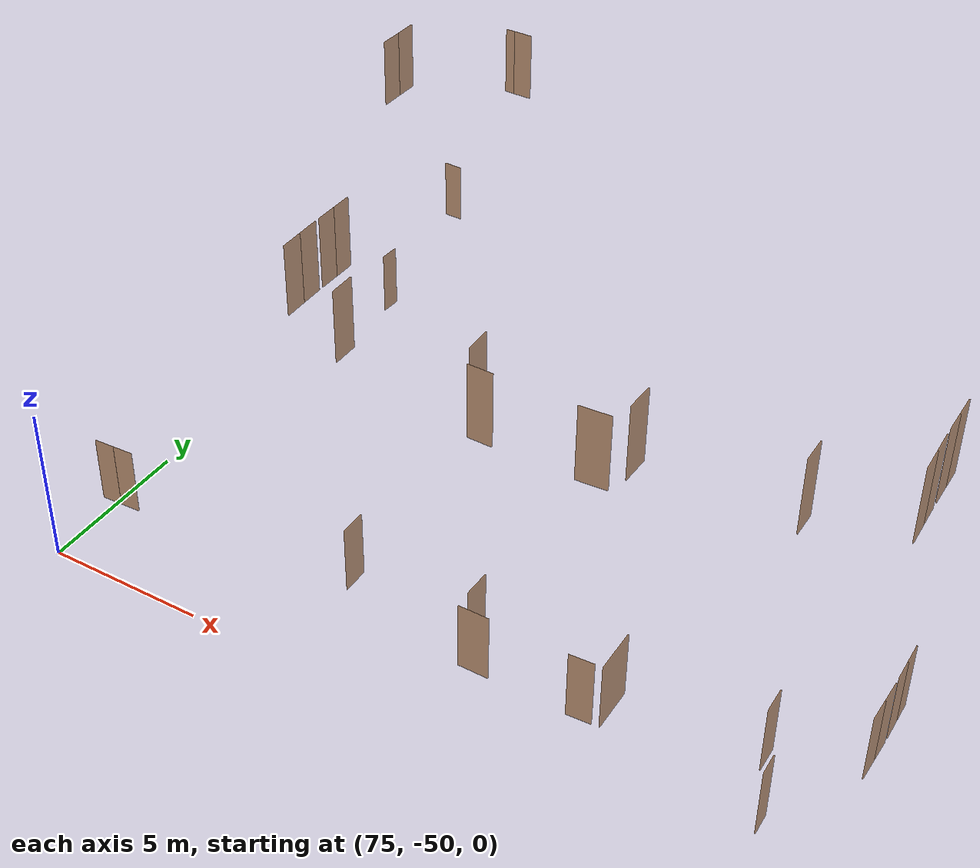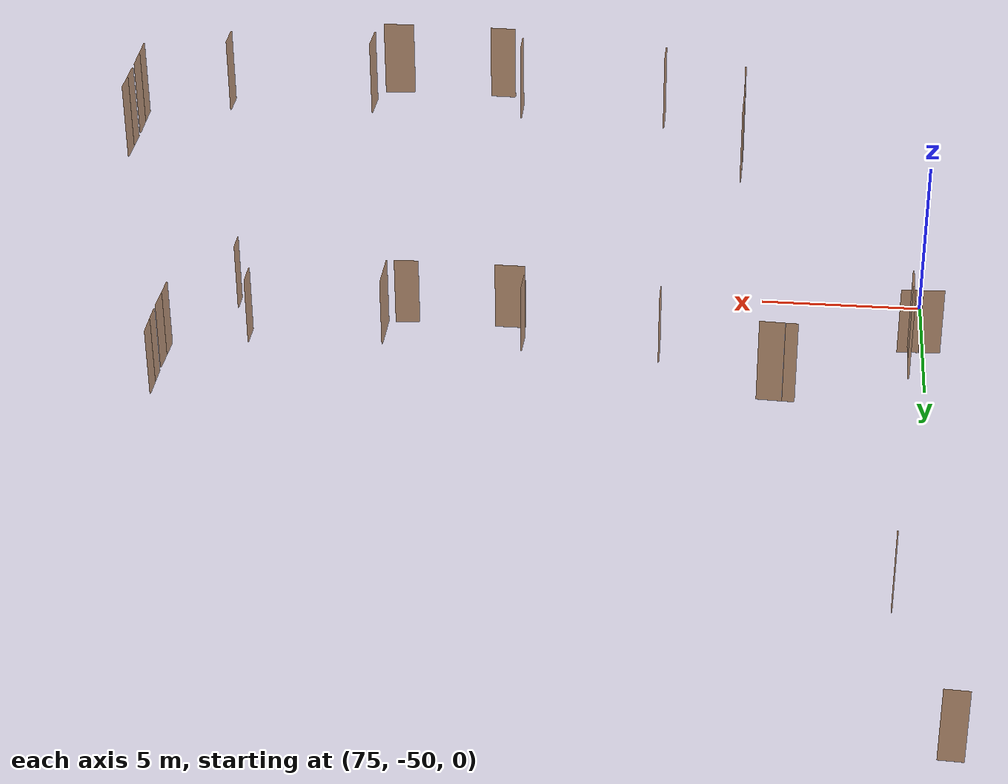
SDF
<sdf version="1.7">
 <world name="sim_world">
  <model name="TD0004SD">
   <pose>74.79835750045166 -27.734196090156722 0.0 0 0 3.0880747045317474</pose>
   <link name="right">
    <pose>0 0 1.11 0 0 0</pose>
    <visual name="right_visual">
     <geometry><box><size>0.680225894375982 0.03 2.2</size></box></geometry>
     <material>
      <ambient>0.5 0.25 0 0.6</ambient>
      <diffuse>0.5 0.25 0 0.6</diffuse>
      <pbr><metal><metalness>0.0</metalness></metal></pbr>
     </material>
    </visual>
    <collision name="right_collision">
     <geometry><box><size>0.680225894375982 0.03 2.2</size></box></geometry>
     <surface><contact><collide_bitmask>0x02</collide_bitmask></contact></surface>
    </collision>
    <inertial>
     <mass>50.0</mass>
     <inertia><ixx>20.17041666666667</ixx><iyy>22.09461361408169</iyy><izz>1.9316969474150196</izz></inertia>
    </inertial>
   </link>
   <joint name="right_joint" type="revolute">
    <parent>world</parent>
    <child>right</child>
    <axis><xyz>0 0 1</xyz><limit><lower>0</lower><upper>1.57</upper></limit></axis>
    <pose>0.345112947187991 0 0 0 0 0</pose>
   </joint>
   <plugin name="register_component" filename="libregister_component.so">
    <component name="Door">
     <v_max_door>0.5</v_max_door>
     <a_max_door>0.3</a_max_door>
     <a_nom_door>0.15</a_nom_door>
     <dx_min_door>0.01</dx_min_door>
     <f_max_door>500.0</f_max_door>
     <ros_interface>true</ros_interface>
     <door name="TD0004SD" type="SwingDoor" left_joint_name="empty_joint" right_joint_name="right_joint"/>
    </component>
   </plugin>
  </model>
  <model name="TD0003SC">
   <pose>76.13918153391711 -34.07165654204597 0.0 0 0 -1.631321297984006</pose>
   <link name="right">
    <pose>0 0 1.11 0 0 0</pose>
    <visual name="right_visual">
     <geometry><box><size>0.6642221204166918 0.03 2.2</size></box></geometry>
     <material>
      <ambient>0.5 0.25 0 0.6</ambient>
      <diffuse>0.5 0.25 0 0.6</diffuse>
      <pbr><metal><metalness>0.0</metalness></metal></pbr>
     </material>
    </visual>
    <collision name="right_collision">
     <geometry><box><size>0.6642221204166918 0.03 2.2</size></box></geometry>
     <surface><contact><collide_bitmask>0x02</collide_bitmask></contact></surface>
    </collision>
    <inertial>
     <mass>50.0</mass>
     <inertia><ixx>20.17041666666667</ixx><iyy>22.004962605211865</iyy><izz>1.8420459385451928</izz></inertia>
    </inertial>
   </link>
   <joint name="right_joint" type="revolute">
    <parent>world</parent>
    <child>right</child>
    <axis><xyz>0 0 -1</xyz><limit><lower>0</lower><upper>1.57</upper></limit></axis>
    <pose>0.3371110602083459 0 0 0 0 0</pose>
   </joint>
   <plugin name="register_component" filename="libregister_component.so">
    <component name="Door">
     <v_max_door>0.5</v_max_door>
     <a_max_door>0.3</a_max_door>
     <a_nom_door>0.15</a_nom_door>
     <dx_min_door>0.01</dx_min_door>
     <f_max_door>500.0</f_max_door>
     <ros_interface>true</ros_interface>
     <door name="TD0003SC" type="SwingDoor" left_joint_name="empty_joint" right_joint_name="right_joint"/>
    </component>
   </plugin>
  </model>
  <model name="TD0001EC2">
   <pose>75.12317994179705 -47.33942553554783 0.0 0 0 0.04271923748868774</pose>
   <link name="right">
    <pose>0.3341276760392261 0 1.11 0 0 0</pose>
    <visual name="right_visual">
     <geometry><box><size>0.6582553520784522 0.03 2.2</size></box></geometry>
     <material>
      <ambient>0.5 0.25 0 0.6</ambient>
      <diffuse>0.5 0.25 0 0.6</diffuse>
      <pbr><metal><metalness>0.0</metalness></metal></pbr>
     </material>
    </visual>
    <collision name="right_collision">
     <geometry><box><size>0.6582553520784522 0.03 2.2</size></box></geometry>
     <surface><contact><collide_bitmask>0x02</collide_bitmask></contact></surface>
    </collision>
    <inertial>
     <mass>50.0</mass>
     <inertia><ixx>20.17041666666667</ixx><iyy>21.972083785583035</iyy><izz>1.809167118916363</izz></inertia>
    </inertial>
   </link>
   <joint name="right_joint" type="revolute">
    <parent>world</parent>
    <child>right</child>
    <axis><xyz>0 0 -1</xyz><limit><lower>0</lower><upper>1.57</upper></limit></axis>
    <pose>0.3341276760392261 0 0 0 0 0</pose>
   </joint>
   <link name="left">
    <pose>-0.3341276760392261 0 1.11 0 0 0</pose>
    <visual name="left_visual">
     <geometry><box><size>0.6582553520784522 0.03 2.2</size></box></geometry>
     <material>
      <ambient>0.5 0.25 0 0.6</ambient>
      <diffuse>0.5 0.25 0 0.6</diffuse>
      <pbr><metal><metalness>0.0</metalness></metal></pbr>
     </material>
    </visual>
    <collision name="left_collision">
     <geometry><box><size>0.6582553520784522 0.03 2.2</size></box></geometry>
     <surface><contact><collide_bitmask>0x02</collide_bitmask></contact></surface>
    </collision>
    <inertial>
     <mass>50.0</mass>
     <inertia><ixx>20.17041666666667</ixx><iyy>21.972083785583035</iyy><izz>1.809167118916363</izz></inertia>
    </inertial>
   </link>
   <joint name="left_joint" type="revolute">
    <parent>world</parent>
    <child>left</child>
    <axis><xyz>0 0 -1</xyz><limit><lower>-1.57</lower><upper>0</upper></limit></axis>
    <pose>-0.3341276760392261 0 0 0 0 0</pose>
   </joint>
   <plugin name="register_component" filename="libregister_component.so">
    <component name="Door">
     <v_max_door>0.5</v_max_door>
     <a_max_door>0.3</a_max_door>
     <a_nom_door>0.15</a_nom_door>
     <dx_min_door>0.01</dx_min_door>
     <f_max_door>500.0</f_max_door>
     <ros_interface>true</ros_interface>
     <door name="TD0001EC2" type="DoubleSwingDoor" left_joint_name="left_joint" right_joint_name="right_joint"/>
    </component>
   </plugin>
  </model>
  <model name="bano011">
   <pose>83.10448165831423 -46.433011116580694 0.0 0 0 1.5813146373530425</pose>
   <link name="right">
    <pose>0 0 1.11 0 0 0</pose>
    <visual name="right_visual">
     <geometry><box><size>0.8585081539588288 0.03 2.2</size></box></geometry>
     <material>
      <ambient>0.5 0.25 0 0.6</ambient>
      <diffuse>0.5 0.25 0 0.6</diffuse>
      <pbr><metal><metalness>0.0</metalness></metal></pbr>
     </material>
    </visual>
    <collision name="right_collision">
     <geometry><box><size>0.8585081539588288 0.03 2.2</size></box></geometry>
     <surface><contact><collide_bitmask>0x02</collide_bitmask></contact></surface>
    </collision>
    <inertial>
     <mass>50.0</mass>
     <inertia><ixx>20.17041666666667</ixx><iyy>23.237651043390823</iyy><izz>3.074734376724151</izz></inertia>
    </inertial>
   </link>
   <joint name="right_joint" type="revolute">
    <parent>world</parent>
    <child>right</child>
    <axis><xyz>0 0 -1</xyz><limit><lower>0</lower><upper>1.57</upper></limit></axis>
    <pose>0.4342540769794144 0 0 0 0 0</pose>
   </joint>
   <plugin name="register_component" filename="libregister_component.so">
    <component name="Door">
     <v_max_door>0.5</v_max_door>
     <a_max_door>0.3</a_max_door>
     <a_nom_door>0.15</a_nom_door>
     <dx_min_door>0.01</dx_min_door>
     <f_max_door>500.0</f_max_door>
     <ros_interface>true</ros_interface>
     <door name="bano011" type="SwingDoor" left_joint_name="empty_joint" right_joint_name="right_joint"/>
    </component>
   </plugin>
  </model>
  <model name="TD0009CW">
   <pose>87.36086317499587 -46.727566624388615 0.0 0 0 1.548810095529099</pose>
   <link name="right">
    <pose>0 0 1.11 0 0 0</pose>
    <visual name="right_visual">
     <geometry><box><size>0.8506552947807262 0.03 2.2</size></box></geometry>
     <material>
      <ambient>0.5 0.25 0 0.6</ambient>
      <diffuse>0.5 0.25 0 0.6</diffuse>
      <pbr><metal><metalness>0.0</metalness></metal></pbr>
     </material>
    </visual>
    <collision name="right_collision">
     <geometry><box><size>0.8506552947807262 0.03 2.2</size></box></geometry>
     <surface><contact><collide_bitmask>0x02</collide_bitmask></contact></surface>
    </collision>
    <inertial>
     <mass>50.0</mass>
     <inertia><ixx>20.17041666666667</ixx><iyy>23.181726793910357</iyy><izz>3.0188101272436842</izz></inertia>
    </inertial>
   </link>
   <joint name="right_joint" type="revolute">
    <parent>world</parent>
    <child>right</child>
    <axis><xyz>0 0 -1</xyz><limit><lower>0</lower><upper>1.57</upper></limit></axis>
    <pose>0.4303276473903631 0 0 0 0 0</pose>
   </joint>
   <plugin name="register_component" filename="libregister_component.so">
    <component name="Door">
     <v_max_door>0.5</v_max_door>
     <a_max_door>0.3</a_max_door>
     <a_nom_door>0.15</a_nom_door>
     <dx_min_door>0.01</dx_min_door>
     <f_max_door>500.0</f_max_door>
     <ros_interface>true</ros_interface>
     <door name="TD0009CW" type="SwingDoor" left_joint_name="empty_joint" right_joint_name="right_joint"/>
    </component>
   </plugin>
  </model>
  <model name="bano015">
   <pose>87.85361827983951 -47.72009086205543 0.0 0 0 3.131120733187098</pose>
   <link name="right">
    <pose>0 0 1.11 0 0 0</pose>
    <visual name="right_visual">
     <geometry><box><size>0.9523774060063468 0.03 2.2</size></box></geometry>
     <material>
      <ambient>0.5 0.25 0 0.6</ambient>
      <diffuse>0.5 0.25 0 0.6</diffuse>
      <pbr><metal><metalness>0.0</metalness></metal></pbr>
     </material>
    </visual>
    <collision name="right_collision">
     <geometry><box><size>0.9523774060063468 0.03 2.2</size></box></geometry>
     <surface><contact><collide_bitmask>0x02</collide_bitmask></contact></surface>
    </collision>
    <inertial>
     <mass>50.0</mass>
     <inertia><ixx>20.17041666666667</ixx><iyy>23.945928014464076</iyy><izz>3.7830113477974083</izz></inertia>
    </inertial>
   </link>
   <joint name="right_joint" type="revolute">
    <parent>world</parent>
    <child>right</child>
    <axis><xyz>0 0 -1</xyz><limit><lower>0</lower><upper>1.57</upper></limit></axis>
    <pose>0.4811887030031734 0 0 0 0 0</pose>
   </joint>
   <plugin name="register_component" filename="libregister_component.so">
    <component name="Door">
     <v_max_door>0.5</v_max_door>
     <a_max_door>0.3</a_max_door>
     <a_nom_door>0.15</a_nom_door>
     <dx_min_door>0.01</dx_min_door>
     <f_max_door>500.0</f_max_door>
     <ros_interface>true</ros_interface>
     <door name="bano015" type="SwingDoor" left_joint_name="empty_joint" right_joint_name="right_joint"/>
    </component>
   </plugin>
  </model>
  <model name="bano016">
   <pose>91.10995652086022 -47.73456781580528 0.0 0 0 0.0493386622574908</pose>
   <link name="right">
    <pose>0 0 1.11 0 0 0</pose>
    <visual name="right_visual">
     <geometry><box><size>0.7568425849847848 0.03 2.2</size></box></geometry>
     <material>
      <ambient>0.5 0.25 0 0.6</ambient>
      <diffuse>0.5 0.25 0 0.6</diffuse>
      <pbr><metal><metalness>0.0</metalness></metal></pbr>
     </material>
    </visual>
    <collision name="right_collision">
     <geometry><box><size>0.7568425849847848 0.03 2.2</size></box></geometry>
     <surface><contact><collide_bitmask>0x02</collide_bitmask></contact></surface>
    </collision>
    <inertial>
     <mass>50.0</mass>
     <inertia><ixx>20.17041666666667</ixx><iyy>22.553377910193554</iyy><izz>2.3904612435268806</izz></inertia>
    </inertial>
   </link>
   <joint name="right_joint" type="revolute">
    <parent>world</parent>
    <child>right</child>
    <axis><xyz>0 0 1</xyz><limit><lower>0</lower><upper>1.57</upper></limit></axis>
    <pose>0.38342129249239243 0 0 0 0 0</pose>
   </joint>
   <plugin name="register_component" filename="libregister_component.so">
    <component name="Door">
     <v_max_door>0.5</v_max_door>
     <a_max_door>0.3</a_max_door>
     <a_nom_door>0.15</a_nom_door>
     <dx_min_door>0.01</dx_min_door>
     <f_max_door>500.0</f_max_door>
     <ros_interface>true</ros_interface>
     <door name="bano016" type="SwingDoor" left_joint_name="empty_joint" right_joint_name="right_joint"/>
    </component>
   </plugin>
  </model>
  <model name="bano017">
   <pose>95.89357971515548 -46.43758987404577 0.0 0 0 1.5818987977262087</pose>
   <link name="right">
    <pose>0 0 1.11 0 0 0</pose>
    <visual name="right_visual">
     <geometry><box><size>0.8128130271172215 0.03 2.2</size></box></geometry>
     <material>
      <ambient>0.5 0.25 0 0.6</ambient>
      <diffuse>0.5 0.25 0 0.6</diffuse>
      <pbr><metal><metalness>0.0</metalness></metal></pbr>
     </material>
    </visual>
    <collision name="right_collision">
     <geometry><box><size>0.8128130271172215 0.03 2.2</size></box></geometry>
     <surface><contact><collide_bitmask>0x02</collide_bitmask></contact></surface>
    </collision>
    <inertial>
     <mass>50.0</mass>
     <inertia><ixx>20.17041666666667</ixx><iyy>22.919437571047762</iyy><izz>2.7565209043810874</izz></inertia>
    </inertial>
   </link>
   <joint name="right_joint" type="revolute">
    <parent>world</parent>
    <child>right</child>
    <axis><xyz>0 0 1</xyz><limit><lower>0</lower><upper>1.57</upper></limit></axis>
    <pose>0.41140651355861074 0 0 0 0 0</pose>
   </joint>
   <plugin name="register_component" filename="libregister_component.so">
    <component name="Door">
     <v_max_door>0.5</v_max_door>
     <a_max_door>0.3</a_max_door>
     <a_nom_door>0.15</a_nom_door>
     <dx_min_door>0.01</dx_min_door>
     <f_max_door>500.0</f_max_door>
     <ros_interface>true</ros_interface>
     <door name="bano017" type="SwingDoor" left_joint_name="empty_joint" right_joint_name="right_joint"/>
    </component>
   </plugin>
  </model>
  <model name="bano018">
   <pose>96.61255686161878 -48.44135738725127 0.0 0 0 1.5939053097456333</pose>
   <link name="right">
    <pose>0 0 1.11 0 0 0</pose>
    <visual name="right_visual">
     <geometry><box><size>0.6631448530400826 0.03 2.2</size></box></geometry>
     <material>
      <ambient>0.5 0.25 0 0.6</ambient>
      <diffuse>0.5 0.25 0 0.6</diffuse>
      <pbr><metal><metalness>0.0</metalness></metal></pbr>
     </material>
    </visual>
    <collision name="right_collision">
     <geometry><box><size>0.6631448530400826 0.03 2.2</size></box></geometry>
     <surface><contact><collide_bitmask>0x02</collide_bitmask></contact></surface>
    </collision>
    <inertial>
     <mass>50.0</mass>
     <inertia><ixx>20.17041666666667</ixx><iyy>21.999004567139806</iyy><izz>1.8360879004731367</izz></inertia>
    </inertial>
   </link>
   <joint name="right_joint" type="revolute">
    <parent>world</parent>
    <child>right</child>
    <axis><xyz>0 0 1</xyz><limit><lower>0</lower><upper>1.57</upper></limit></axis>
    <pose>0.3365724265200413 0 0 0 0 0</pose>
   </joint>
   <plugin name="register_component" filename="libregister_component.so">
    <component name="Door">
     <v_max_door>0.5</v_max_door>
     <a_max_door>0.3</a_max_door>
     <a_nom_door>0.15</a_nom_door>
     <dx_min_door>0.01</dx_min_door>
     <f_max_door>500.0</f_max_door>
     <ros_interface>true</ros_interface>
     <door name="bano018" type="SwingDoor" left_joint_name="empty_joint" right_joint_name="right_joint"/>
    </component>
   </plugin>
  </model>
  <model name="TD0014CP1">
   <pose>98.26902337660995 -43.42105283281319 0.0 0 0 1.5803984075257813</pose>
   <link name="right">
    <pose>0.34011186770259527 0 1.11 0 0 0</pose>
    <visual name="right_visual">
     <geometry><box><size>0.6702237354051905 0.03 2.2</size></box></geometry>
     <material>
      <ambient>0.5 0.25 0 0.6</ambient>
      <diffuse>0.5 0.25 0 0.6</diffuse>
      <pbr><metal><metalness>0.0</metalness></metal></pbr>
     </material>
    </visual>
    <collision name="right_collision">
     <geometry><box><size>0.6702237354051905 0.03 2.2</size></box></geometry>
     <surface><contact><collide_bitmask>0x02</collide_bitmask></contact></surface>
    </collision>
    <inertial>
     <mass>50.0</mass>
     <inertia><ixx>20.17041666666667</ixx><iyy>22.038332731252034</iyy><izz>1.8754160645853621</izz></inertia>
    </inertial>
   </link>
   <joint name="right_joint" type="revolute">
    <parent>world</parent>
    <child>right</child>
    <axis><xyz>0 0 -1</xyz><limit><lower>0</lower><upper>1.57</upper></limit></axis>
    <pose>0.34011186770259527 0 0 0 0 0</pose>
   </joint>
   <link name="left">
    <pose>-0.34011186770259527 0 1.11 0 0 0</pose>
    <visual name="left_visual">
     <geometry><box><size>0.6702237354051905 0.03 2.2</size></box></geometry>
     <material>
      <ambient>0.5 0.25 0 0.6</ambient>
      <diffuse>0.5 0.25 0 0.6</diffuse>
      <pbr><metal><metalness>0.0</metalness></metal></pbr>
     </material>
    </visual>
    <collision name="left_collision">
     <geometry><box><size>0.6702237354051905 0.03 2.2</size></box></geometry>
     <surface><contact><collide_bitmask>0x02</collide_bitmask></contact></surface>
    </collision>
    <inertial>
     <mass>50.0</mass>
     <inertia><ixx>20.17041666666667</ixx><iyy>22.038332731252034</iyy><izz>1.8754160645853621</izz></inertia>
    </inertial>
   </link>
   <joint name="left_joint" type="revolute">
    <parent>world</parent>
    <child>left</child>
    <axis><xyz>0 0 -1</xyz><limit><lower>-1.57</lower><upper>0</upper></limit></axis>
    <pose>-0.34011186770259527 0 0 0 0 0</pose>
   </joint>
   <plugin name="register_component" filename="libregister_component.so">
    <component name="Door">
     <v_max_door>0.5</v_max_door>
     <a_max_door>0.3</a_max_door>
     <a_nom_door>0.15</a_nom_door>
     <dx_min_door>0.01</dx_min_door>
     <f_max_door>500.0</f_max_door>
     <ros_interface>true</ros_interface>
     <door name="TD0014CP1" type="DoubleSwingDoor" left_joint_name="left_joint" right_joint_name="right_joint"/>
    </component>
   </plugin>
  </model>
  <model name="TD0014CP2">
   <pose>98.2577784869531 -45.01359630240969 0.0 0 0 1.54642404726844</pose>
   <link name="right">
    <pose>0.36471993718789486 0 1.11 0 0 0</pose>
    <visual name="right_visual">
     <geometry><box><size>0.7194398743757897 0.03 2.2</size></box></geometry>
     <material>
      <ambient>0.5 0.25 0 0.6</ambient>
      <diffuse>0.5 0.25 0 0.6</diffuse>
      <pbr><metal><metalness>0.0</metalness></metal></pbr>
     </material>
    </visual>
    <collision name="right_collision">
     <geometry><box><size>0.7194398743757897 0.03 2.2</size></box></geometry>
     <surface><contact><collide_bitmask>0x02</collide_bitmask></contact></surface>
    </collision>
    <inertial>
     <mass>50.0</mass>
     <inertia><ixx>20.17041666666667</ixx><iyy>22.32330722017439</iyy><izz>2.160390553507717</izz></inertia>
    </inertial>
   </link>
   <joint name="right_joint" type="revolute">
    <parent>world</parent>
    <child>right</child>
    <axis><xyz>0 0 -1</xyz><limit><lower>0</lower><upper>1.57</upper></limit></axis>
    <pose>0.36471993718789486 0 0 0 0 0</pose>
   </joint>
   <link name="left">
    <pose>-0.36471993718789486 0 1.11 0 0 0</pose>
    <visual name="left_visual">
     <geometry><box><size>0.7194398743757897 0.03 2.2</size></box></geometry>
     <material>
      <ambient>0.5 0.25 0 0.6</ambient>
      <diffuse>0.5 0.25 0 0.6</diffuse>
      <pbr><metal><metalness>0.0</metalness></metal></pbr>
     </material>
    </visual>
    <collision name="left_collision">
     <geometry><box><size>0.7194398743757897 0.03 2.2</size></box></geometry>
     <surface><contact><collide_bitmask>0x02</collide_bitmask></contact></surface>
    </collision>
    <inertial>
     <mass>50.0</mass>
     <inertia><ixx>20.17041666666667</ixx><iyy>22.32330722017439</iyy><izz>2.160390553507717</izz></inertia>
    </inertial>
   </link>
   <joint name="left_joint" type="revolute">
    <parent>world</parent>
    <child>left</child>
    <axis><xyz>0 0 -1</xyz><limit><lower>-1.57</lower><upper>0</upper></limit></axis>
    <pose>-0.36471993718789486 0 0 0 0 0</pose>
   </joint>
   <plugin name="register_component" filename="libregister_component.so">
    <component name="Door">
     <v_max_door>0.5</v_max_door>
     <a_max_door>0.3</a_max_door>
     <a_nom_door>0.15</a_nom_door>
     <dx_min_door>0.01</dx_min_door>
     <f_max_door>500.0</f_max_door>
     <ros_interface>true</ros_interface>
     <door name="TD0014CP2" type="DoubleSwingDoor" left_joint_name="left_joint" right_joint_name="right_joint"/>
    </component>
   </plugin>
  </model>
  <model name="null">
   <pose>91.71982905929562 -47.001775839833385 0.0 0 0 1.5707963267948966</pose>
   <link name="right">
    <pose>0 0 1.11 0 0 0</pose>
    <visual name="right_visual">
     <geometry><box><size>1.417764313077887 0.03 2.2</size></box></geometry>
     <material>
      <ambient>0.5 0.25 0 0.6</ambient>
      <diffuse>0.5 0.25 0 0.6</diffuse>
      <pbr><metal><metalness>0.0</metalness></metal></pbr>
     </material>
    </visual>
    <collision name="right_collision">
     <geometry><box><size>1.417764313077887 0.03 2.2</size></box></geometry>
     <surface><contact><collide_bitmask>0x02</collide_bitmask></contact></surface>
    </collision>
    <inertial>
     <mass>50.0</mass>
     <inertia><ixx>20.17041666666667</ixx><iyy>28.54189853098839</iyy><izz>8.378981864321721</izz></inertia>
    </inertial>
   </link>
   <joint name="right_joint" type="revolute">
    <parent>world</parent>
    <child>right</child>
    <axis><xyz>0 0 1</xyz><limit><lower>0</lower><upper>1.57</upper></limit></axis>
    <pose>0.7138821565389435 0 0 0 0 0</pose>
   </joint>
   <plugin name="register_component" filename="libregister_component.so">
    <component name="Door">
     <v_max_door>0.5</v_max_door>
     <a_max_door>0.3</a_max_door>
     <a_nom_door>0.15</a_nom_door>
     <dx_min_door>0.01</dx_min_door>
     <f_max_door>500.0</f_max_door>
     <ros_interface>true</ros_interface>
     <door name="null" type="SwingDoor" left_joint_name="empty_joint" right_joint_name="right_joint"/>
    </component>
   </plugin>
  </model>
  <model name="TD0112FR">
   <pose>76.27606314217377 -33.41932435095574 8.0 0 0 -1.5805137048583946</pose>
   <link name="right">
    <pose>0.3946552893605957 0 1.11 0 0 0</pose>
    <visual name="right_visual">
     <geometry><box><size>0.7793105787211914 0.03 2.2</size></box></geometry>
     <material>
      <ambient>0.5 0.25 0 0.6</ambient>
      <diffuse>0.5 0.25 0 0.6</diffuse>
      <pbr><metal><metalness>0.0</metalness></metal></pbr>
     </material>
    </visual>
    <collision name="right_collision">
     <geometry><box><size>0.7793105787211914 0.03 2.2</size></box></geometry>
     <surface><contact><collide_bitmask>0x02</collide_bitmask></contact></surface>
    </collision>
    <inertial>
     <mass>50.0</mass>
     <inertia><ixx>20.17041666666667</ixx><iyy>22.697187408778166</iyy><izz>2.534270742111493</izz></inertia>
    </inertial>
   </link>
   <joint name="right_joint" type="revolute">
    <parent>world</parent>
    <child>right</child>
    <axis><xyz>0 0 -1</xyz><limit><lower>0</lower><upper>1.57</upper></limit></axis>
    <pose>0.3946552893605957 0 0 0 0 0</pose>
   </joint>
   <link name="left">
    <pose>-0.3946552893605957 0 1.11 0 0 0</pose>
    <visual name="left_visual">
     <geometry><box><size>0.7793105787211914 0.03 2.2</size></box></geometry>
     <material>
      <ambient>0.5 0.25 0 0.6</ambient>
      <diffuse>0.5 0.25 0 0.6</diffuse>
      <pbr><metal><metalness>0.0</metalness></metal></pbr>
     </material>
    </visual>
    <collision name="left_collision">
     <geometry><box><size>0.7793105787211914 0.03 2.2</size></box></geometry>
     <surface><contact><collide_bitmask>0x02</collide_bitmask></contact></surface>
    </collision>
    <inertial>
     <mass>50.0</mass>
     <inertia><ixx>20.17041666666667</ixx><iyy>22.697187408778166</iyy><izz>2.534270742111493</izz></inertia>
    </inertial>
   </link>
   <joint name="left_joint" type="revolute">
    <parent>world</parent>
    <child>left</child>
    <axis><xyz>0 0 -1</xyz><limit><lower>-1.57</lower><upper>0</upper></limit></axis>
    <pose>-0.3946552893605957 0 0 0 0 0</pose>
   </joint>
   <plugin name="register_component" filename="libregister_component.so">
    <component name="Door">
     <v_max_door>0.5</v_max_door>
     <a_max_door>0.3</a_max_door>
     <a_nom_door>0.15</a_nom_door>
     <dx_min_door>0.01</dx_min_door>
     <f_max_door>500.0</f_max_door>
     <ros_interface>true</ros_interface>
     <door name="TD0112FR" type="DoubleSwingDoor" left_joint_name="left_joint" right_joint_name="right_joint"/>
    </component>
   </plugin>
  </model>
  <model name="TD0125DP">
   <pose>79.55417862068859 -31.34204735176244 8.0 0 0 3.093300224154347</pose>
   <link name="right">
    <pose>0.31686954406185663 0 1.11 0 0 0</pose>
    <visual name="right_visual">
     <geometry><box><size>0.3068695440618566 0.03 2.2</size></box></geometry>
     <material>
      <ambient>0.5 0.25 0 0.6</ambient>
      <diffuse>0.5 0.25 0 0.6</diffuse>
      <pbr><metal><metalness>0.0</metalness></metal></pbr>
     </material>
    </visual>
    <collision name="right_collision">
     <geometry><box><size>0.3068695440618566 0.03 2.2</size></box></geometry>
     <surface><contact><collide_bitmask>0x02</collide_bitmask></contact></surface>
    </collision>
    <inertial>
     <mass>50.0</mass>
     <inertia><ixx>20.17041666666667</ixx><iyy>20.559037154469717</iyy><izz>0.39612048780304904</izz></inertia>
    </inertial>
   </link>
   <joint name="right_joint" type="revolute">
    <parent>world</parent>
    <child>right</child>
    <axis><xyz>0 0 -1</xyz><limit><lower>0</lower><upper>1.57</upper></limit></axis>
    <pose>0.15843477203092832 0 0 0 0 0</pose>
   </joint>
   <link name="left">
    <pose>-0.15843477203092832 0 1.11 0 0 0</pose>
    <visual name="left_visual">
     <geometry><box><size>0.6237390881237133 0.03 2.2</size></box></geometry>
     <material>
      <ambient>0.5 0.25 0 0.6</ambient>
      <diffuse>0.5 0.25 0 0.6</diffuse>
      <pbr><metal><metalness>0.0</metalness></metal></pbr>
     </material>
    </visual>
    <collision name="left_collision">
     <geometry><box><size>0.6237390881237133 0.03 2.2</size></box></geometry>
     <surface><contact><collide_bitmask>0x02</collide_bitmask></contact></surface>
    </collision>
    <inertial>
     <mass>50.0</mass>
     <inertia><ixx>20.17041666666667</ixx><iyy>21.787710208555843</iyy><izz>1.6247935418891724</izz></inertia>
    </inertial>
   </link>
   <joint name="left_joint" type="revolute">
    <parent>world</parent>
    <child>left</child>
    <axis><xyz>0 0 -1</xyz><limit><lower>-1.57</lower><upper>0</upper></limit></axis>
    <pose>-0.31686954406185663 0 0 0 0 0</pose>
   </joint>
   <plugin name="register_component" filename="libregister_component.so">
    <component name="Door">
     <v_max_door>0.5</v_max_door>
     <a_max_door>0.3</a_max_door>
     <a_nom_door>0.15</a_nom_door>
     <dx_min_door>0.01</dx_min_door>
     <f_max_door>500.0</f_max_door>
     <ros_interface>true</ros_interface>
     <door name="TD0125DP" type="DoubleSwingDoor" left_joint_name="left_joint" right_joint_name="right_joint"/>
    </component>
   </plugin>
  </model>
  <model name="bano11">
   <pose>83.12115098966026 -46.42747207679933 8.0 0 0 1.5739918915008537</pose>
   <link name="right">
    <pose>0 0 1.11 0 0 0</pose>
    <visual name="right_visual">
     <geometry><box><size>0.8085229082769446 0.03 2.2</size></box></geometry>
     <material>
      <ambient>0.5 0.25 0 0.6</ambient>
      <diffuse>0.5 0.25 0 0.6</diffuse>
      <pbr><metal><metalness>0.0</metalness></metal></pbr>
     </material>
    </visual>
    <collision name="right_collision">
     <geometry><box><size>0.8085229082769446 0.03 2.2</size></box></geometry>
     <surface><contact><collide_bitmask>0x02</collide_bitmask></contact></surface>
    </collision>
    <inertial>
     <mass>50.0</mass>
     <inertia><ixx>20.17041666666667</ixx><iyy>22.890455388369208</iyy><izz>2.727538721702536</izz></inertia>
    </inertial>
   </link>
   <joint name="right_joint" type="revolute">
    <parent>world</parent>
    <child>right</child>
    <axis><xyz>0 0 -1</xyz><limit><lower>0</lower><upper>1.57</upper></limit></axis>
    <pose>0.4092614541384723 0 0 0 0 0</pose>
   </joint>
   <plugin name="register_component" filename="libregister_component.so">
    <component name="Door">
     <v_max_door>0.5</v_max_door>
     <a_max_door>0.3</a_max_door>
     <a_nom_door>0.15</a_nom_door>
     <dx_min_door>0.01</dx_min_door>
     <f_max_door>500.0</f_max_door>
     <ros_interface>true</ros_interface>
     <door name="bano11" type="SwingDoor" left_joint_name="empty_joint" right_joint_name="right_joint"/>
    </component>
   </plugin>
  </model>
  <model name="TD0116CW">
   <pose>87.33556820432368 -46.71327545660678 8.0 0 0 1.5897047612231876</pose>
   <link name="right">
    <pose>0 0 1.11 0 0 0</pose>
    <visual name="right_visual">
     <geometry><box><size>0.8193714331441315 0.03 2.2</size></box></geometry>
     <material>
      <ambient>0.5 0.25 0 0.6</ambient>
      <diffuse>0.5 0.25 0 0.6</diffuse>
      <pbr><metal><metalness>0.0</metalness></metal></pbr>
     </material>
    </visual>
    <collision name="right_collision">
     <geometry><box><size>0.8193714331441315 0.03 2.2</size></box></geometry>
     <surface><contact><collide_bitmask>0x02</collide_bitmask></contact></surface>
    </collision>
    <inertial>
     <mass>50.0</mass>
     <inertia><ixx>20.17041666666667</ixx><iyy>22.964039772719456</iyy><izz>2.8011231060527835</izz></inertia>
    </inertial>
   </link>
   <joint name="right_joint" type="revolute">
    <parent>world</parent>
    <child>right</child>
    <axis><xyz>0 0 -1</xyz><limit><lower>0</lower><upper>1.57</upper></limit></axis>
    <pose>0.41468571657206577 0 0 0 0 0</pose>
   </joint>
   <plugin name="register_component" filename="libregister_component.so">
    <component name="Door">
     <v_max_door>0.5</v_max_door>
     <a_max_door>0.3</a_max_door>
     <a_nom_door>0.15</a_nom_door>
     <dx_min_door>0.01</dx_min_door>
     <f_max_door>500.0</f_max_door>
     <ros_interface>true</ros_interface>
     <door name="TD0116CW" type="SwingDoor" left_joint_name="empty_joint" right_joint_name="right_joint"/>
    </component>
   </plugin>
  </model>
  <model name="bano15">
   <pose>87.99969229539565 -47.717978297521626 8.0 0 0 3.1074870969399293</pose>
   <link name="right">
    <pose>0 0 1.11 0 0 0</pose>
    <visual name="right_visual">
     <geometry><box><size>0.727989818265767 0.03 2.2</size></box></geometry>
     <material>
      <ambient>0.5 0.25 0 0.6</ambient>
      <diffuse>0.5 0.25 0 0.6</diffuse>
      <pbr><metal><metalness>0.0</metalness></metal></pbr>
     </material>
    </visual>
    <collision name="right_collision">
     <geometry><box><size>0.727989818265767 0.03 2.2</size></box></geometry>
     <surface><contact><collide_bitmask>0x02</collide_bitmask></contact></surface>
    </collision>
    <inertial>
     <mass>50.0</mass>
     <inertia><ixx>20.17041666666667</ixx><iyy>22.374871564577607</iyy><izz>2.211954897910936</izz></inertia>
    </inertial>
   </link>
   <joint name="right_joint" type="revolute">
    <parent>world</parent>
    <child>right</child>
    <axis><xyz>0 0 -1</xyz><limit><lower>0</lower><upper>1.57</upper></limit></axis>
    <pose>0.3689949091328835 0 0 0 0 0</pose>
   </joint>
   <plugin name="register_component" filename="libregister_component.so">
    <component name="Door">
     <v_max_door>0.5</v_max_door>
     <a_max_door>0.3</a_max_door>
     <a_nom_door>0.15</a_nom_door>
     <dx_min_door>0.01</dx_min_door>
     <f_max_door>500.0</f_max_door>
     <ros_interface>true</ros_interface>
     <door name="bano15" type="SwingDoor" left_joint_name="empty_joint" right_joint_name="right_joint"/>
    </component>
   </plugin>
  </model>
  <model name="bano16">
   <pose>91.1009032946051 -47.73355049538572 8.0 0 0 0.04892582185563511</pose>
   <link name="right">
    <pose>0 0 1.11 0 0 0</pose>
    <visual name="right_visual">
     <geometry><box><size>0.8818100781607421 0.03 2.2</size></box></geometry>
     <material>
      <ambient>0.5 0.25 0 0.6</ambient>
      <diffuse>0.5 0.25 0 0.6</diffuse>
      <pbr><metal><metalness>0.0</metalness></metal></pbr>
     </material>
    </visual>
    <collision name="right_collision">
     <geometry><box><size>0.8818100781607421 0.03 2.2</size></box></geometry>
     <surface><contact><collide_bitmask>0x02</collide_bitmask></contact></surface>
    </collision>
    <inertial>
     <mass>50.0</mass>
     <inertia><ixx>20.17041666666667</ixx><iyy>23.406620891441065</iyy><izz>3.2437042247743926</izz></inertia>
    </inertial>
   </link>
   <joint name="right_joint" type="revolute">
    <parent>world</parent>
    <child>right</child>
    <axis><xyz>0 0 1</xyz><limit><lower>0</lower><upper>1.57</upper></limit></axis>
    <pose>0.44590503908037105 0 0 0 0 0</pose>
   </joint>
   <plugin name="register_component" filename="libregister_component.so">
    <component name="Door">
     <v_max_door>0.5</v_max_door>
     <a_max_door>0.3</a_max_door>
     <a_nom_door>0.15</a_nom_door>
     <dx_min_door>0.01</dx_min_door>
     <f_max_door>500.0</f_max_door>
     <ros_interface>true</ros_interface>
     <door name="bano16" type="SwingDoor" left_joint_name="empty_joint" right_joint_name="right_joint"/>
    </component>
   </plugin>
  </model>
  <model name="bano17">
   <pose>95.94125941713821 -46.42989011922741 8.0 0 0 1.5709753921216942</pose>
   <link name="right">
    <pose>0 0 1.11 0 0 0</pose>
    <visual name="right_visual">
     <geometry><box><size>0.7624598038857092 0.03 2.2</size></box></geometry>
     <material>
      <ambient>0.5 0.25 0 0.6</ambient>
      <diffuse>0.5 0.25 0 0.6</diffuse>
      <pbr><metal><metalness>0.0</metalness></metal></pbr>
     </material>
    </visual>
    <collision name="right_collision">
     <geometry><box><size>0.7624598038857092 0.03 2.2</size></box></geometry>
     <surface><contact><collide_bitmask>0x02</collide_bitmask></contact></surface>
    </collision>
    <inertial>
     <mass>50.0</mass>
     <inertia><ixx>20.17041666666667</ixx><iyy>22.588937302255978</iyy><izz>2.426020635589309</izz></inertia>
    </inertial>
   </link>
   <joint name="right_joint" type="revolute">
    <parent>world</parent>
    <child>right</child>
    <axis><xyz>0 0 1</xyz><limit><lower>0</lower><upper>1.57</upper></limit></axis>
    <pose>0.3862299019428546 0 0 0 0 0</pose>
   </joint>
   <plugin name="register_component" filename="libregister_component.so">
    <component name="Door">
     <v_max_door>0.5</v_max_door>
     <a_max_door>0.3</a_max_door>
     <a_nom_door>0.15</a_nom_door>
     <dx_min_door>0.01</dx_min_door>
     <f_max_door>500.0</f_max_door>
     <ros_interface>true</ros_interface>
     <door name="bano17" type="SwingDoor" left_joint_name="empty_joint" right_joint_name="right_joint"/>
    </component>
   </plugin>
  </model>
  <model name="TD0117CW">
   <pose>91.73253180637943 -46.70548493211402 8.0 0 0 1.5422422993392775</pose>
   <link name="right">
    <pose>0 0 1.11 0 0 0</pose>
    <visual name="right_visual">
     <geometry><box><size>0.8791200049220861 0.03 2.2</size></box></geometry>
     <material>
      <ambient>0.5 0.25 0 0.6</ambient>
      <diffuse>0.5 0.25 0 0.6</diffuse>
      <pbr><metal><metalness>0.0</metalness></metal></pbr>
     </material>
    </visual>
    <collision name="right_collision">
     <geometry><box><size>0.8791200049220861 0.03 2.2</size></box></geometry>
     <surface><contact><collide_bitmask>0x02</collide_bitmask></contact></surface>
    </collision>
    <inertial>
     <mass>50.0</mass>
     <inertia><ixx>20.17041666666667</ixx><iyy>23.386883262725874</iyy><izz>3.223966596059203</izz></inertia>
    </inertial>
   </link>
   <joint name="right_joint" type="revolute">
    <parent>world</parent>
    <child>right</child>
    <axis><xyz>0 0 1</xyz><limit><lower>0</lower><upper>1.57</upper></limit></axis>
    <pose>0.44456000246104305 0 0 0 0 0</pose>
   </joint>
   <plugin name="register_component" filename="libregister_component.so">
    <component name="Door">
     <v_max_door>0.5</v_max_door>
     <a_max_door>0.3</a_max_door>
     <a_nom_door>0.15</a_nom_door>
     <dx_min_door>0.01</dx_min_door>
     <f_max_door>500.0</f_max_door>
     <ros_interface>true</ros_interface>
     <door name="TD0117CW" type="SwingDoor" left_joint_name="empty_joint" right_joint_name="right_joint"/>
    </component>
   </plugin>
  </model>
  <model name="TD0123CP4">
   <pose>98.2893497568908 -45.014243545732946 8.0 0 0 1.5965628936361385</pose>
   <link name="right">
    <pose>0.3572903923254022 0 1.11 0 0 0</pose>
    <visual name="right_visual">
     <geometry><box><size>0.7045807846508044 0.03 2.2</size></box></geometry>
     <material>
      <ambient>0.5 0.25 0 0.6</ambient>
      <diffuse>0.5 0.25 0 0.6</diffuse>
      <pbr><metal><metalness>0.0</metalness></metal></pbr>
     </material>
    </visual>
    <collision name="right_collision">
     <geometry><box><size>0.7045807846508044 0.03 2.2</size></box></geometry>
     <surface><contact><collide_bitmask>0x02</collide_bitmask></contact></surface>
    </collision>
    <inertial>
     <mass>50.0</mass>
     <inertia><ixx>20.17041666666667</ixx><iyy>22.235142008746436</iyy><izz>2.0722253420797636</izz></inertia>
    </inertial>
   </link>
   <joint name="right_joint" type="revolute">
    <parent>world</parent>
    <child>right</child>
    <axis><xyz>0 0 -1</xyz><limit><lower>0</lower><upper>1.57</upper></limit></axis>
    <pose>0.3572903923254022 0 0 0 0 0</pose>
   </joint>
   <link name="left">
    <pose>-0.3572903923254022 0 1.11 0 0 0</pose>
    <visual name="left_visual">
     <geometry><box><size>0.7045807846508044 0.03 2.2</size></box></geometry>
     <material>
      <ambient>0.5 0.25 0 0.6</ambient>
      <diffuse>0.5 0.25 0 0.6</diffuse>
      <pbr><metal><metalness>0.0</metalness></metal></pbr>
     </material>
    </visual>
    <collision name="left_collision">
     <geometry><box><size>0.7045807846508044 0.03 2.2</size></box></geometry>
     <surface><contact><collide_bitmask>0x02</collide_bitmask></contact></surface>
    </collision>
    <inertial>
     <mass>50.0</mass>
     <inertia><ixx>20.17041666666667</ixx><iyy>22.235142008746436</iyy><izz>2.0722253420797636</izz></inertia>
    </inertial>
   </link>
   <joint name="left_joint" type="revolute">
    <parent>world</parent>
    <child>left</child>
    <axis><xyz>0 0 -1</xyz><limit><lower>-1.57</lower><upper>0</upper></limit></axis>
    <pose>-0.3572903923254022 0 0 0 0 0</pose>
   </joint>
   <plugin name="register_component" filename="libregister_component.so">
    <component name="Door">
     <v_max_door>0.5</v_max_door>
     <a_max_door>0.3</a_max_door>
     <a_nom_door>0.15</a_nom_door>
     <dx_min_door>0.01</dx_min_door>
     <f_max_door>500.0</f_max_door>
     <ros_interface>true</ros_interface>
     <door name="TD0123CP4" type="DoubleSwingDoor" left_joint_name="left_joint" right_joint_name="right_joint"/>
    </component>
   </plugin>
  </model>
  <model name="TD0123CP3">
   <pose>98.26936857519783 -43.424121061480164 8.0 0 0 1.573122115917073</pose>
   <link name="right">
    <pose>0.32936348724030956 0 1.11 0 0 0</pose>
    <visual name="right_visual">
     <geometry><box><size>0.6487269744806191 0.03 2.2</size></box></geometry>
     <material>
      <ambient>0.5 0.25 0 0.6</ambient>
      <diffuse>0.5 0.25 0 0.6</diffuse>
      <pbr><metal><metalness>0.0</metalness></metal></pbr>
     </material>
    </visual>
    <collision name="right_collision">
     <geometry><box><size>0.6487269744806191 0.03 2.2</size></box></geometry>
     <surface><contact><collide_bitmask>0x02</collide_bitmask></contact></surface>
    </collision>
    <inertial>
     <mass>50.0</mass>
     <inertia><ixx>20.17041666666667</ixx><iyy>21.92019453091158</iyy><izz>1.7572778642449078</izz></inertia>
    </inertial>
   </link>
   <joint name="right_joint" type="revolute">
    <parent>world</parent>
    <child>right</child>
    <axis><xyz>0 0 -1</xyz><limit><lower>0</lower><upper>1.57</upper></limit></axis>
    <pose>0.32936348724030956 0 0 0 0 0</pose>
   </joint>
   <link name="left">
    <pose>-0.32936348724030956 0 1.11 0 0 0</pose>
    <visual name="left_visual">
     <geometry><box><size>0.6487269744806191 0.03 2.2</size></box></geometry>
     <material>
      <ambient>0.5 0.25 0 0.6</ambient>
      <diffuse>0.5 0.25 0 0.6</diffuse>
      <pbr><metal><metalness>0.0</metalness></metal></pbr>
     </material>
    </visual>
    <collision name="left_collision">
     <geometry><box><size>0.6487269744806191 0.03 2.2</size></box></geometry>
     <surface><contact><collide_bitmask>0x02</collide_bitmask></contact></surface>
    </collision>
    <inertial>
     <mass>50.0</mass>
     <inertia><ixx>20.17041666666667</ixx><iyy>21.92019453091158</iyy><izz>1.7572778642449078</izz></inertia>
    </inertial>
   </link>
   <joint name="left_joint" type="revolute">
    <parent>world</parent>
    <child>left</child>
    <axis><xyz>0 0 -1</xyz><limit><lower>-1.57</lower><upper>0</upper></limit></axis>
    <pose>-0.32936348724030956 0 0 0 0 0</pose>
   </joint>
   <plugin name="register_component" filename="libregister_component.so">
    <component name="Door">
     <v_max_door>0.5</v_max_door>
     <a_max_door>0.3</a_max_door>
     <a_nom_door>0.15</a_nom_door>
     <dx_min_door>0.01</dx_min_door>
     <f_max_door>500.0</f_max_door>
     <ros_interface>true</ros_interface>
     <door name="TD0123CP3" type="DoubleSwingDoor" left_joint_name="left_joint" right_joint_name="right_joint"/>
    </component>
   </plugin>
  </model>
  <model name="TD0123CP1">
   <pose>80.76817690430725 -43.446210642965184 8.0 0 0 -1.5810030175274183</pose>
   <link name="right">
    <pose>0.33499792972939585 0 1.11 0 0 0</pose>
    <visual name="right_visual">
     <geometry><box><size>0.6599958594587917 0.03 2.2</size></box></geometry>
     <material>
      <ambient>0.5 0.25 0 0.6</ambient>
      <diffuse>0.5 0.25 0 0.6</diffuse>
      <pbr><metal><metalness>0.0</metalness></metal></pbr>
     </material>
    </visual>
    <collision name="right_collision">
     <geometry><box><size>0.6599958594587917 0.03 2.2</size></box></geometry>
     <surface><contact><collide_bitmask>0x02</collide_bitmask></contact></surface>
    </collision>
    <inertial>
     <mass>50.0</mass>
     <inertia><ixx>20.17041666666667</ixx><iyy>21.981643893761458</iyy><izz>1.818727227094788</izz></inertia>
    </inertial>
   </link>
   <joint name="right_joint" type="revolute">
    <parent>world</parent>
    <child>right</child>
    <axis><xyz>0 0 -1</xyz><limit><lower>0</lower><upper>1.57</upper></limit></axis>
    <pose>0.33499792972939585 0 0 0 0 0</pose>
   </joint>
   <link name="left">
    <pose>-0.33499792972939585 0 1.11 0 0 0</pose>
    <visual name="left_visual">
     <geometry><box><size>0.6599958594587917 0.03 2.2</size></box></geometry>
     <material>
      <ambient>0.5 0.25 0 0.6</ambient>
      <diffuse>0.5 0.25 0 0.6</diffuse>
      <pbr><metal><metalness>0.0</metalness></metal></pbr>
     </material>
    </visual>
    <collision name="left_collision">
     <geometry><box><size>0.6599958594587917 0.03 2.2</size></box></geometry>
     <surface><contact><collide_bitmask>0x02</collide_bitmask></contact></surface>
    </collision>
    <inertial>
     <mass>50.0</mass>
     <inertia><ixx>20.17041666666667</ixx><iyy>21.981643893761458</iyy><izz>1.818727227094788</izz></inertia>
    </inertial>
   </link>
   <joint name="left_joint" type="revolute">
    <parent>world</parent>
    <child>left</child>
    <axis><xyz>0 0 -1</xyz><limit><lower>-1.57</lower><upper>0</upper></limit></axis>
    <pose>-0.33499792972939585 0 0 0 0 0</pose>
   </joint>
   <plugin name="register_component" filename="libregister_component.so">
    <component name="Door">
     <v_max_door>0.5</v_max_door>
     <a_max_door>0.3</a_max_door>
     <a_nom_door>0.15</a_nom_door>
     <dx_min_door>0.01</dx_min_door>
     <f_max_door>500.0</f_max_door>
     <ros_interface>true</ros_interface>
     <door name="TD0123CP1" type="DoubleSwingDoor" left_joint_name="left_joint" right_joint_name="right_joint"/>
    </component>
   </plugin>
  </model>
  <model name="TD0123CP2">
   <pose>80.77027340353536 -45.0007592736398 8.0 0 0 -1.5535864209297303</pose>
   <link name="right">
    <pose>0.3664126367814453 0 1.11 0 0 0</pose>
    <visual name="right_visual">
     <geometry><box><size>0.7228252735628906 0.03 2.2</size></box></geometry>
     <material>
      <ambient>0.5 0.25 0 0.6</ambient>
      <diffuse>0.5 0.25 0 0.6</diffuse>
      <pbr><metal><metalness>0.0</metalness></metal></pbr>
     </material>
    </visual>
    <collision name="right_collision">
     <geometry><box><size>0.7228252735628906 0.03 2.2</size></box></geometry>
     <surface><contact><collide_bitmask>0x02</collide_bitmask></contact></surface>
    </collision>
    <inertial>
     <mass>50.0</mass>
     <inertia><ixx>20.17041666666667</ixx><iyy>22.34365156708862</iyy><izz>2.1807349004219487</izz></inertia>
    </inertial>
   </link>
   <joint name="right_joint" type="revolute">
    <parent>world</parent>
    <child>right</child>
    <axis><xyz>0 0 -1</xyz><limit><lower>0</lower><upper>1.57</upper></limit></axis>
    <pose>0.3664126367814453 0 0 0 0 0</pose>
   </joint>
   <link name="left">
    <pose>-0.3664126367814453 0 1.11 0 0 0</pose>
    <visual name="left_visual">
     <geometry><box><size>0.7228252735628906 0.03 2.2</size></box></geometry>
     <material>
      <ambient>0.5 0.25 0 0.6</ambient>
      <diffuse>0.5 0.25 0 0.6</diffuse>
      <pbr><metal><metalness>0.0</metalness></metal></pbr>
     </material>
    </visual>
    <collision name="left_collision">
     <geometry><box><size>0.7228252735628906 0.03 2.2</size></box></geometry>
     <surface><contact><collide_bitmask>0x02</collide_bitmask></contact></surface>
    </collision>
    <inertial>
     <mass>50.0</mass>
     <inertia><ixx>20.17041666666667</ixx><iyy>22.34365156708862</iyy><izz>2.1807349004219487</izz></inertia>
    </inertial>
   </link>
   <joint name="left_joint" type="revolute">
    <parent>world</parent>
    <child>left</child>
    <axis><xyz>0 0 -1</xyz><limit><lower>-1.57</lower><upper>0</upper></limit></axis>
    <pose>-0.3664126367814453 0 0 0 0 0</pose>
   </joint>
   <plugin name="register_component" filename="libregister_component.so">
    <component name="Door">
     <v_max_door>0.5</v_max_door>
     <a_max_door>0.3</a_max_door>
     <a_nom_door>0.15</a_nom_door>
     <dx_min_door>0.01</dx_min_door>
     <f_max_door>500.0</f_max_door>
     <ros_interface>true</ros_interface>
     <door name="TD0123CP2" type="DoubleSwingDoor" left_joint_name="left_joint" right_joint_name="right_joint"/>
    </component>
   </plugin>
  </model>
 </world>
</sdf>
